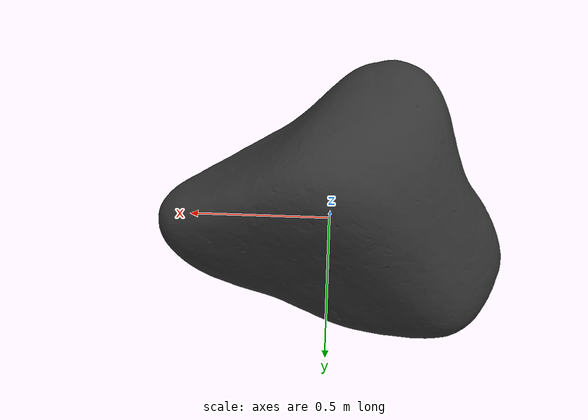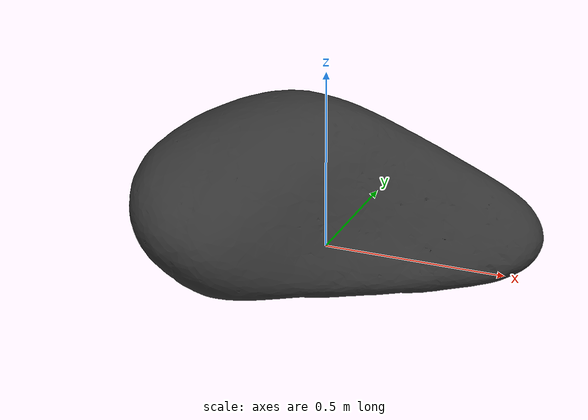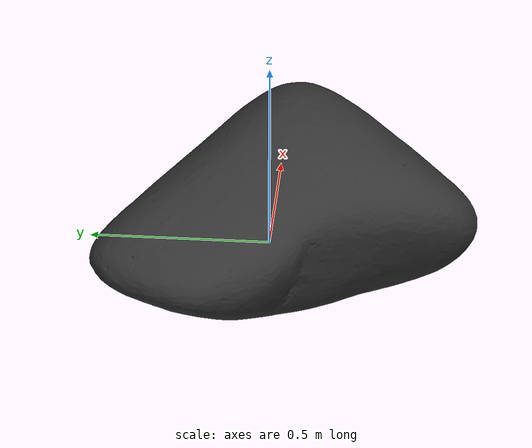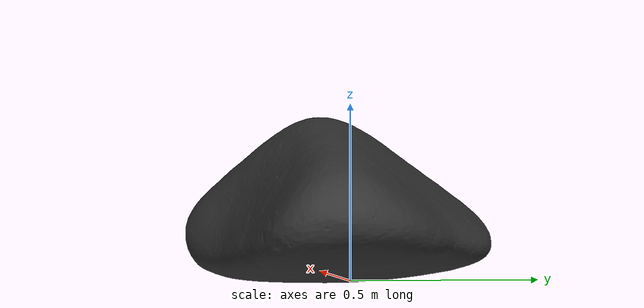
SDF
<?xml version="1.0" ?>
<sdf version='1.6'>
  <model name="qr_rock2">

    <static>true</static>

    <link name="qr_rock2_link">

    <visual name="link0_visual">
        <geometry>
          <mesh>
            <uri>package://lunar_local_planning/worlds/models/plane_rocks/qr_rock2/meshes/qr_rock2.dae</uri>
            <scale>3 3 3</scale>
          </mesh>
        </geometry>
        <material>
          <diffuse>0.2 0.2 0.2</diffuse>
          <specular>0.2 0.2 0.2</specular>
          <pbr>
            <metal>
              <albedo_map>package://lunar_local_planning/worlds/models/plane_rocks/qr_rock2/meshes/textures/qr_rock2_diffuse.png</albedo_map>
            </metal>
          </pbr>
        </material>
      </visual>

      <collision name="qr_rock2_colission">
        <geometry>
          <mesh>
            <uri>package://lunar_local_planning/worlds/models/plane_rocks/qr_rock2/meshes/qr_rock2.dae</uri>
            <scale>3 3 3</scale>
          </mesh>
        </geometry>
        <max_contacts>10</max_contacts>
        <surface>
          <bounce/>
          <friction>
            <ode/>
          </friction>
          <contact>
            <ode/>
          </contact>
        </surface>
      </collision>

    </link>

  </model>
</sdf>
